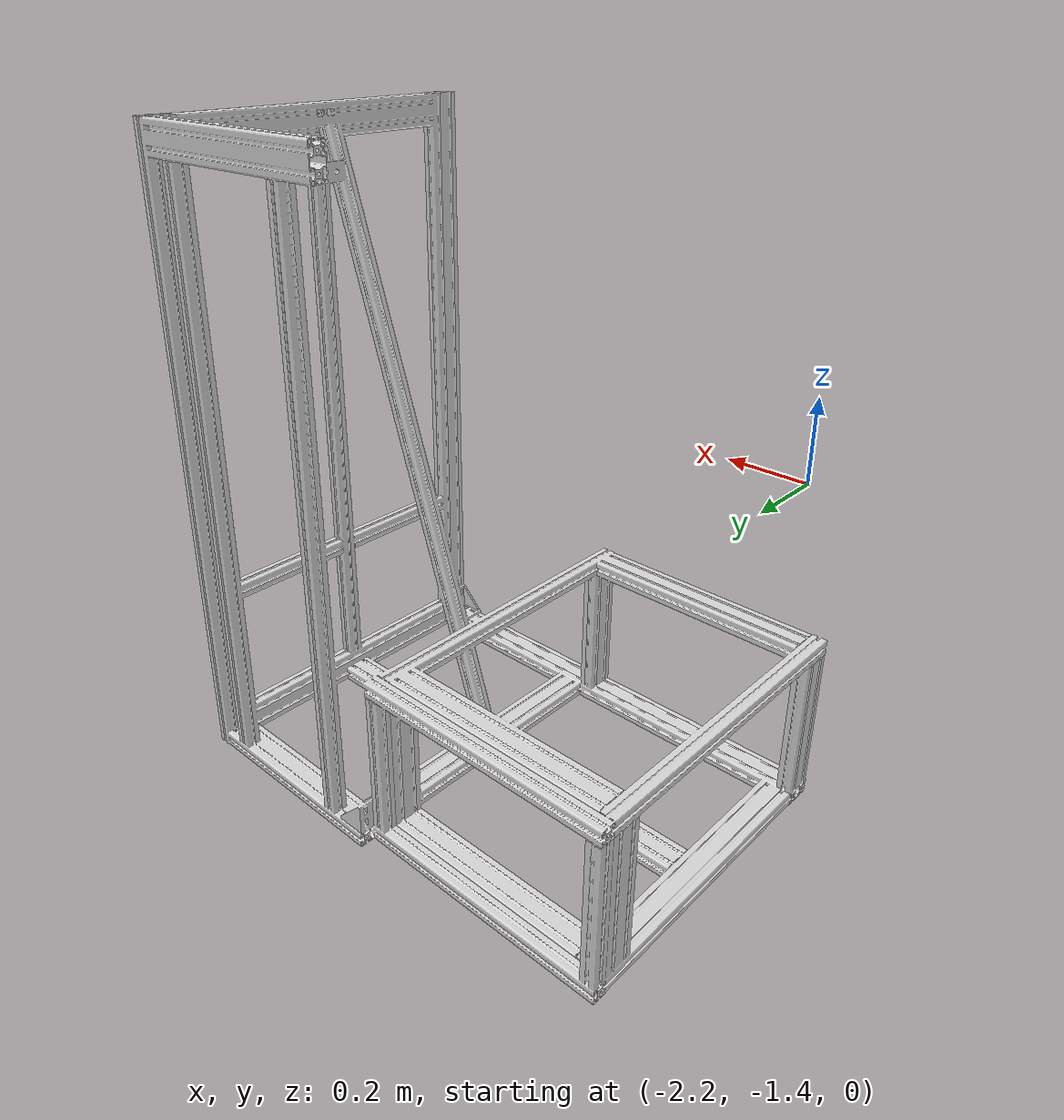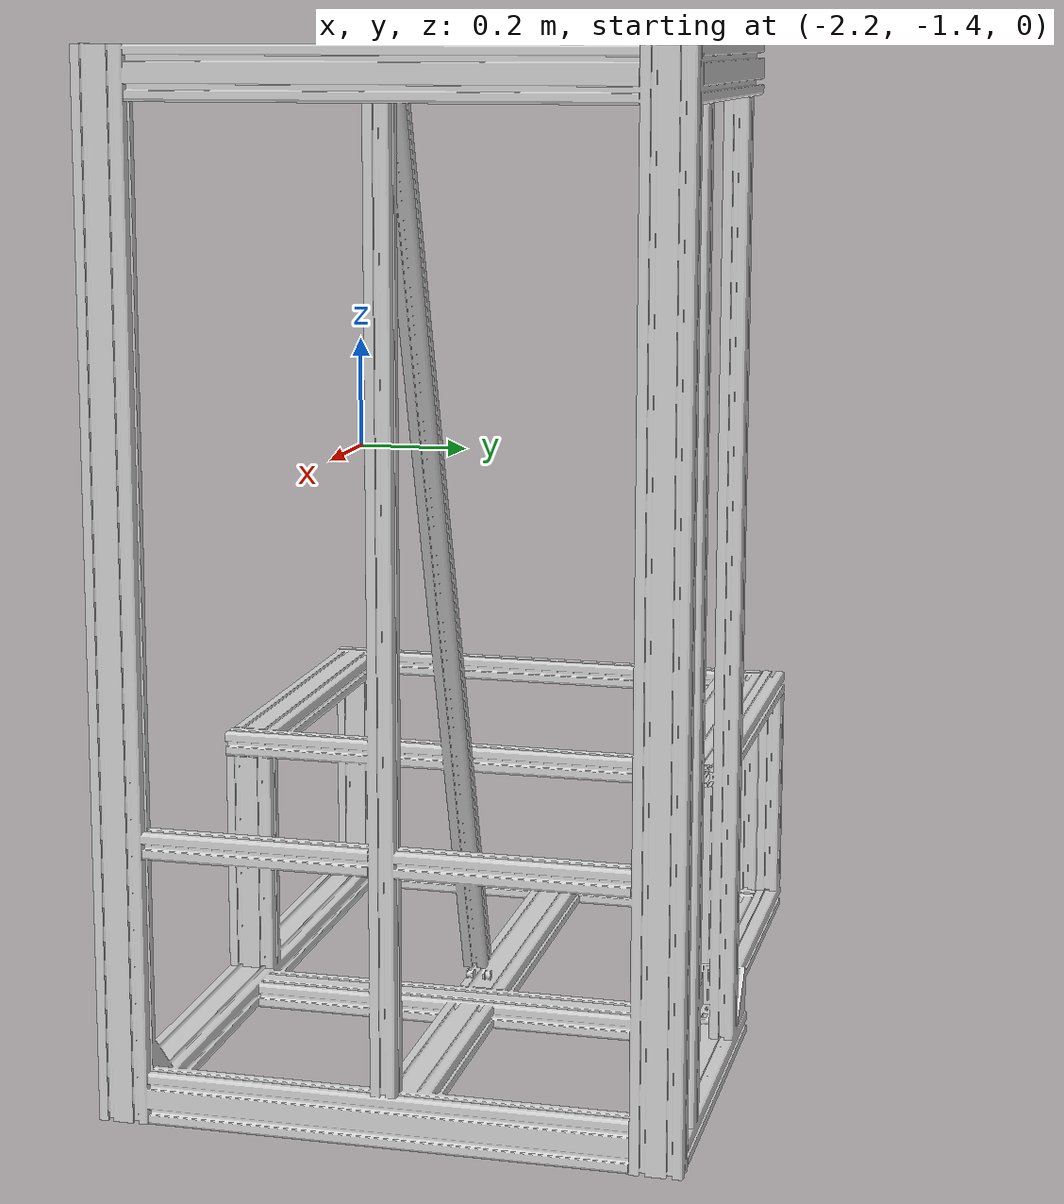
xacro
<?xml version="1.0"?>
<robot xmlns:xacro="http://wiki.ros.org/xacro" name="trainer_frame">
  <xacro:arg name="prefix" default=""/>

  <xacro:include filename="$(find trainer)/urdf/colors.xacro"/>
  <xacro:include filename="$(find trainer)/urdf/trainer_frame.xacro"/>

  <link name="world"/>

  <xacro:trainer_frame prefix="$(arg prefix)" parent="world">
    <origin xyz="0 0 0" rpy="0 0 0"/>
  </xacro:trainer_frame>

</robot>

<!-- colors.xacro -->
<robot xmlns:xacro="http://wiki.ros.org/xacro" name="trainer_side">

  <material name="red">
    <color rgba="1.0 0 0 1"/>
  </material>

  <material name="green">
    <color rgba="0 1.0 0 1"/>
  </material>

  <material name="blue">
    <color rgba="0 0 1.0 1"/>
  </material>

  <material name="gray">
    <color rgba="0.85 0.85 0.85 1.0"/>
  </material>

  <material name="white">
    <color rgba="1.0 1.0 1.0 1.0"/>
  </material>

</robot>

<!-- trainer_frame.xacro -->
<robot xmlns:xacro="http://wiki.ros.org/xacro">

  <xacro:macro name="trainer_frame" params="
    prefix:=''
    parent:=''
    *origin">

    <joint name="${prefix}trainer_frame_base_joint" type="fixed">
      <parent link="${parent}"/>
      <child link="${prefix}trainer_frame"/>
      <xacro:insert_block name="origin"/>
    </joint>

    <link name="${prefix}trainer_frame">
      <visual>
        <!--Offset is to adjust for the radius on the extrusion-->
        <origin xyz="0.0 0.004 0.0" rpy="0 0 0"/>
        <geometry>
          <mesh filename="package://trainer/meshes/visual/ivr_tasktrainer_frame.stl"/>
        </geometry>
        <material name="gray"/>
      </visual>
    </link>

    <joint name="${prefix}trainer_box_joint" type="fixed">
      <parent link="${prefix}trainer_frame"/>
      <child link="${prefix}trainer_box"/>
      <origin xyz="0.0 0.0 0.0" rpy="0 0 0"/>
    </joint>

    <link name="${prefix}trainer_box">
      <!--TODO set proper inertia-->
      <inertial>
        <origin rpy="0 0 0" xyz="0.0 0.0 0.0"/>
        <mass value="0.1"/>
        <inertia ixx="0.1" ixy="0.0" ixz="0.0" iyy="0.1" iyz="0.0" izz="0.1"/>
      </inertial>
      <collision>
        <origin xyz="${1.27/2} ${0.896/2} ${0.47/2}" rpy="0 0 0"/>
        <geometry>
          <box size="1.27 0.896 0.47"/>
        </geometry>
        <material name="red"/>
      </collision>
    </link>

    <joint name="${prefix}trainer_top_joint" type="fixed">
      <parent link="${prefix}trainer_frame"/>
      <child link="${prefix}trainer_top"/>
      <origin xyz="0.0 0.0 1.52" rpy="0 0 0"/>
    </joint>

    <link name="${prefix}trainer_top">
      <collision>
        <origin xyz="${1.27/2} ${0.896/2} ${0.1/2}" rpy="0 0 0"/>
        <geometry>
          <box size="1.27 0.896 0.1"/>
        </geometry>
        <material name="red"/>
      </collision>
    </link>

    <joint name="${prefix}trainer_plane_left_joint" type="fixed">
      <parent link="${prefix}trainer_frame"/>
      <child link="${prefix}trainer_plane_left"/>
      <origin xyz="0.0 0.0 0.0" rpy="0 0 0"/>
    </joint>

    <link name="${prefix}trainer_plane_left">
      <collision>
        <origin xyz="${1.27/2} ${0.1/2} ${1.60/2}" rpy="0 0 0"/>
        <geometry>
          <box size="1.27 0.1 1.60"/>
        </geometry>
        <material name="red"/>
      </collision>
    </link>

    <joint name="${prefix}trainer_plane_middle_joint" type="fixed">
      <parent link="${prefix}trainer_frame"/>
      <child link="${prefix}trainer_plane_middle"/>
      <origin xyz="0.0 0.42 0.0" rpy="0 0 0"/>
    </joint>

    <link name="${prefix}trainer_plane_middle">
      <collision>
        <origin xyz="${1.27/2} ${0.05/2} ${1.60/2}" rpy="0 0 0"/>
        <geometry>
          <box size="1.27 0.05 1.60"/>
        </geometry>
        <material name="red"/>
      </collision>
    </link>

    <joint name="${prefix}trainer_plane_right_1_joint" type="fixed">
      <parent link="${prefix}trainer_frame"/>
      <child link="${prefix}trainer_plane_right_1"/>
      <origin xyz="0.0 0.8 0.0" rpy="0 0 0"/>
    </joint>

    <link name="${prefix}trainer_plane_right_1">
      <collision>
        <origin xyz="${0.810/2} ${0.1/2} ${1.60/2}" rpy="0 0 0"/>
        <geometry>
          <box size="0.810 0.1 1.60"/>
        </geometry>
        <material name="red"/>
      </collision>
    </link>

    <joint name="${prefix}trainer_plane_right_2_joint" type="fixed">
      <parent link="${prefix}trainer_frame"/>
      <child link="${prefix}trainer_plane_right_2"/>
      <origin xyz="1.124 0.81 0.0" rpy="0 0 0"/>
    </joint>

    <link name="${prefix}trainer_plane_right_2">
      <collision>
        <origin xyz="${0.14/2} ${0.1/2} ${1.60/2}" rpy="0 0 0"/>
        <geometry>
          <box size="0.14 0.1 1.60"/>
        </geometry>
        <material name="red"/>
      </collision>
    </link>

  </xacro:macro>
</robot>
